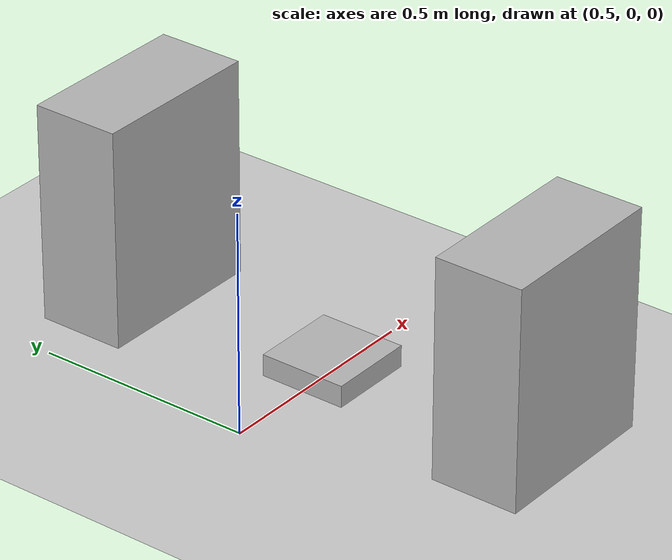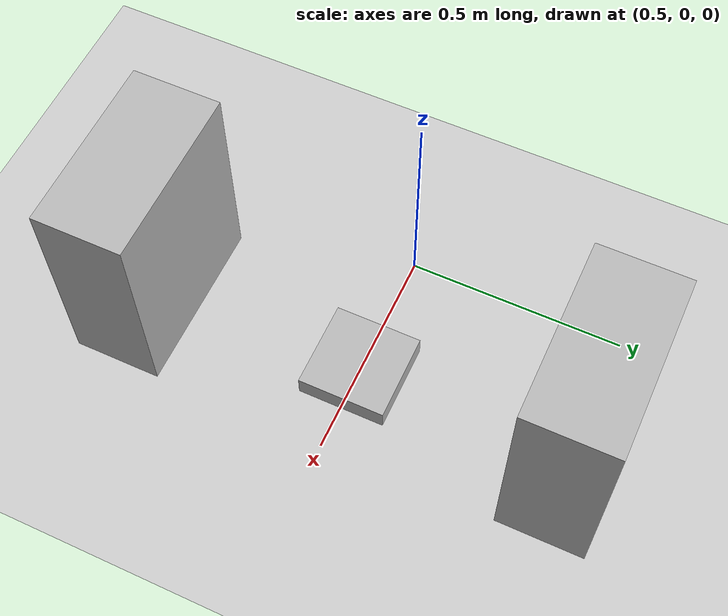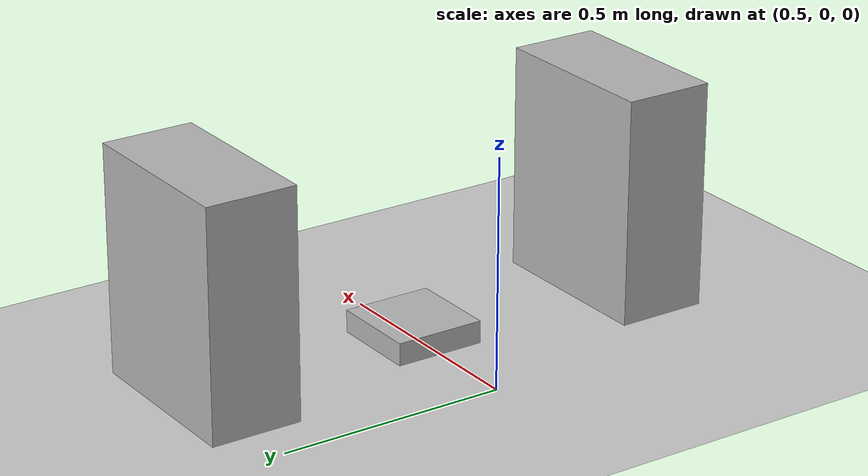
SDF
<sdf version="1.4">
    <!-- June 2022 -->
    <!-- Author: Walid Remmas -->
    <!-- Contact: walid.remmas@ŧaltech.ee -->
     <gravity>0.0 0.0 -9.81</gravity>

    <world name="default">
      <include>
        <uri>model://sun</uri>
      </include>

      <include>
       <uri>model://ground_plane</uri>
     </include>

     <!-- Faster physics solver to run the simulation on limited hardware -->
     <physics default="1" name="ODE_SOLVER" type="ode">
      <real_time_update_rate>200.0</real_time_update_rate>
      <max_step_size>0.005</max_step_size>
      <real_time_factor>1.0</real_time_factor>
     </physics>

     <model name ='boxes'>
         <static>true</static>
         <pose>0.8 0 0 0 0 0</pose>
         <link name ='box1'>
          <pose>0 0 0.025 0 0 0</pose>
          <collision name ='collision'>
            <geometry>
              <box><size>0.2 0.2 0.05</size></box>
            </geometry>
            <surface>
            <friction>
              <ode>
                <mu>0</mu>
                <mu2>0</mu2>
              </ode>
            </friction>
          </surface>
          </collision>
          <visual name ='visual'>
            <geometry>
              <box><size>0.2 0.2 0.05</size></box>
            </geometry>
          </visual>
         </link>

         <link name ='box2'>
          <pose>0 0.5 0.25 0 0 0</pose>
          <collision name ='collision'>
            <geometry>
              <box><size>0.4 0.2 0.5</size></box>
            </geometry>
            <surface>
            <friction>
              <ode>
                <mu>0</mu>
                <mu2>0</mu2>
              </ode>
            </friction>
          </surface>
          </collision>
          <visual name ='visual'>
            <geometry>
              <box><size>0.4 0.2 0.5</size></box>
            </geometry>
          </visual>
         </link>

         <link name ='box3'>
          <pose>0 -0.5 0.25 0 0 0</pose>
          <collision name ='collision'>
            <geometry>
              <box><size>0.4 0.2 0.5</size></box>
            </geometry>
            <surface>
            <friction>
              <ode>
                <mu>0</mu>
                <mu2>0</mu2>
              </ode>
            </friction>
          </surface>
          </collision>
          <visual name ='visual'>
            <geometry>
              <box><size>0.4 0.2 0.5</size></box>
            </geometry>
          </visual>
         </link>
    </model>
    </world>

  </sdf>
